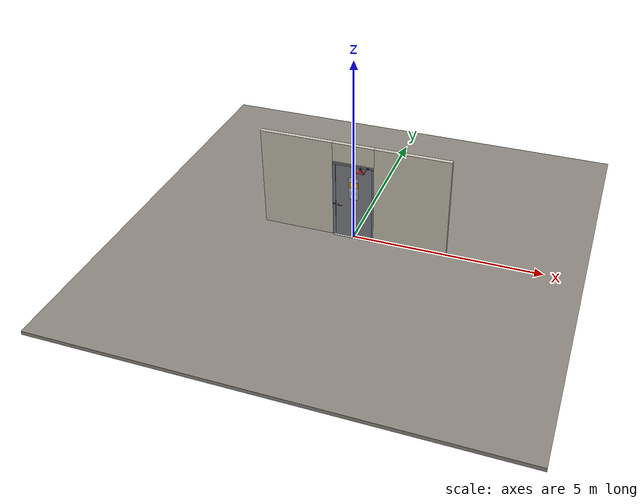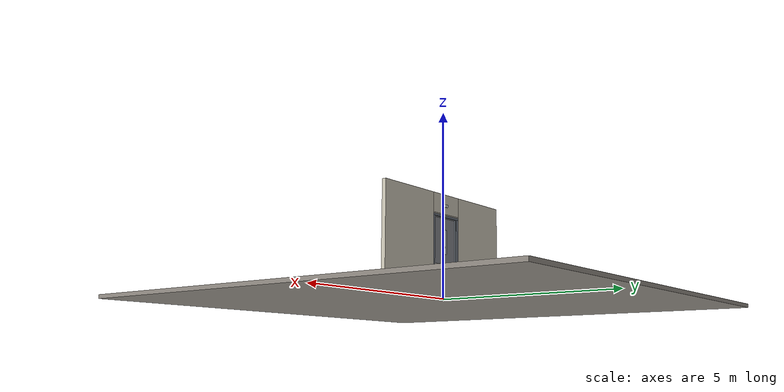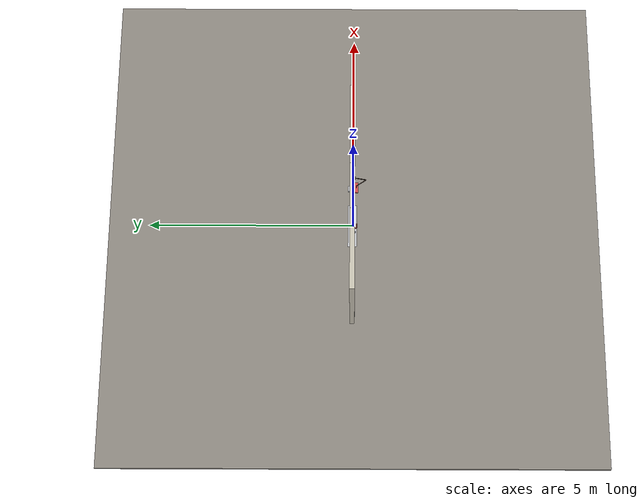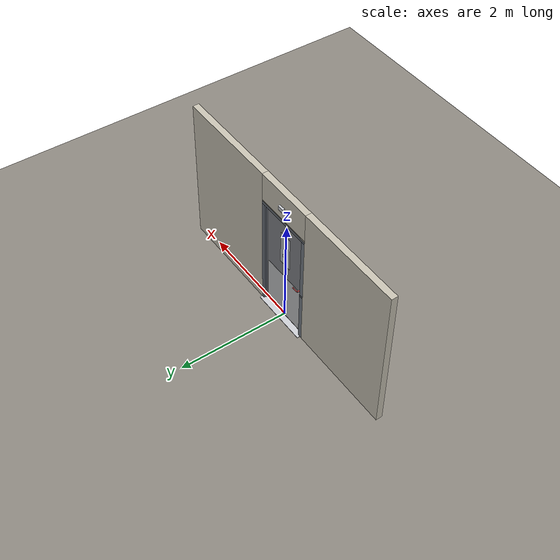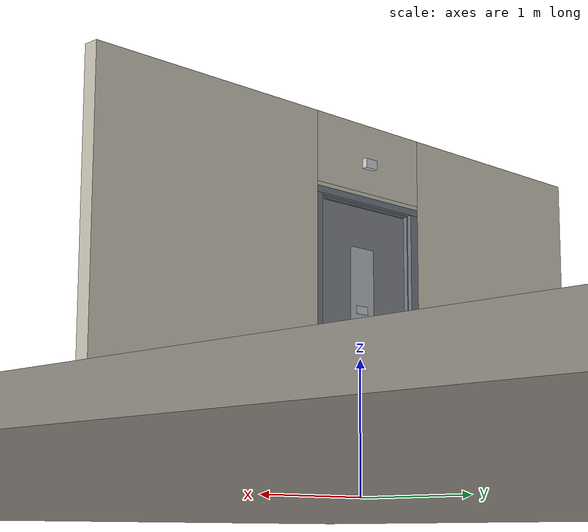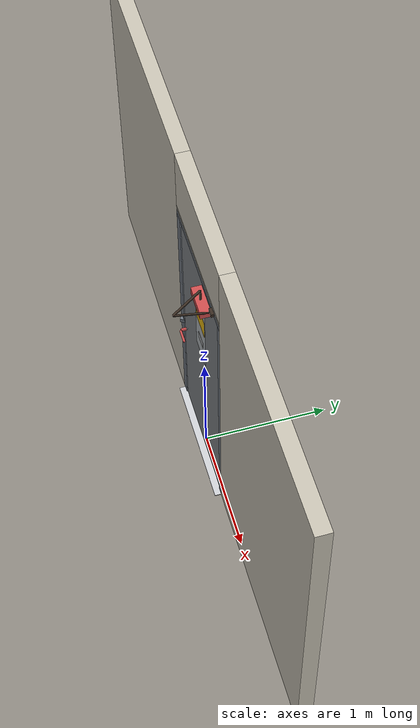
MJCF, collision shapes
<?xml version="1.0" ?>
<mujoco model="db0385_swing_single_full">
  <compiler angle="radian" meshdir="../../hardware" texturedir="../../textures" autolimits="true" inertiafromgeom="false"/>
  <option timestep="0.002" integrator="implicitfast" cone="elliptic" impratio="10" noslip_iterations="3">
    <flag multiccd="enable"/>
  </option>
  <size memory="16M"/>
  <default>
    <geom condim="4" solref="0.005 1" solimp="0.95 0.99 0.001"/>
    <joint solreflimit="0.005 1" solimplimit="0.95 0.99 0.001"/>
    <tendon solreflimit="0.005 1"/>
    <equality solref="0.002 1"/>
  </default>
  <visual>
    <headlight ambient="0.4 0.4 0.4" diffuse="0.7 0.7 0.7" specular="0.2 0.2 0.2"/>
    <quality shadowsize="4096"/>
    <map znear="0.01" zfar="60"/>
  </visual>
  <asset>
    <mesh name="closer_body_b226fdb10b" file="closer_body_b226fdb10b.obj"/>
    <mesh name="exit_sign_a6449bfa2c" file="exit_sign_a6449bfa2c.obj"/>
    <mesh name="hinge_e22b26c0c1" file="hinge_e22b26c0c1.obj"/>
    <mesh name="hinge_jamb_e1d088f8dc" file="hinge_jamb_e1d088f8dc.obj"/>
    <mesh name="lever_6268dcb28c" file="lever_6268dcb28c.obj"/>
    <material name="mat_floor" rgba="0.55 0.53 0.5 1" specular="0.2" shininess="0.15" reflectance="0"/>
    <material name="mat_wall" rgba="0.78 0.76 0.7 1" specular="0.2" shininess="0.1" reflectance="0"/>
    <material name="mat_leaf" rgba="0.5 0.51 0.53 1" specular="0.2" shininess="0.63" reflectance="0"/>
    <material name="mat_glass" rgba="0.9 0.93 0.95 0.6" specular="0.2" shininess="0.5" reflectance="0.1"/>
    <material name="mat_hinge" rgba="0.65 0.66 0.68 1" specular="0.74" shininess="0.5" reflectance="0.36"/>
    <material name="mat_op_stainless" rgba="0.75 0.76 0.77 1" specular="0.8" shininess="0.65" reflectance="0.4"/>
    <material name="mat_trim" rgba="0.85 0.66 0.3 1" specular="0.8" shininess="0.75" reflectance="0.4"/>
    <material name="mat_bolt" rgba="0.85 0.66 0.3 1" specular="0.8" shininess="0.75" reflectance="0.4"/>
    <material name="mat_frame" rgba="0.45 0.48 0.52 1" specular="0.32" shininess="0.6" reflectance="0.08"/>
    <material name="mat_seal" rgba="0.1 0.1 0.1 1" specular="0.2" shininess="0.1" reflectance="0"/>
    <material name="mat_threshold" rgba="0.8 0.81 0.83 1" specular="0.8" shininess="0.6" reflectance="0.4"/>
    <material name="mat_closer" rgba="0.22 0.17 0.13 1" specular="0.8" shininess="0.6" reflectance="0.4"/>
    <material name="mat_kick" rgba="0.75 0.76 0.77 1" specular="0.8" shininess="0.65" reflectance="0.4"/>
    <material name="mat_exit_sign" rgba="0.85 0.1 0.1 1" specular="0.2" shininess="0.6" reflectance="0"/>
    <material name="mat_sign_bracket" rgba="0.8 0.81 0.83 1" specular="0.8" shininess="0.6" reflectance="0.4"/>
    <material name="mat_sign" rgba="0.75 0.76 0.77 1" specular="0.8" shininess="0.65" reflectance="0.4"/>
    <material name="mat_placard" rgba="0.95 0.75 0.05 1" specular="0.2" shininess="0.5" reflectance="0"/>
    <texture name="skybox" type="skybox" builtin="gradient" rgb1="0.6 0.7 0.85" rgb2="0.9 0.92 0.95" width="256" height="256"/>
  </asset>
  <worldbody>
    <light name="sun" pos="1.5 -2.5 4" dir="-0.3 0.5 -0.8" directional="true" diffuse="0.8 0.8 0.8" specular="0.3 0.3 0.3" castshadow="true"/>
    <light name="fill" pos="-1.5 2.5 3" dir="0.3 -0.5 -0.7" directional="true" diffuse="0.35 0.35 0.4" castshadow="false"/>
    <camera name="robot_view" pos="0 -2.609312 1.812087" xyaxes="1 0 0 0 0.26963 0.962964" fovy="52"/>
    <camera name="far_view" pos="0 2.666313 1.812087" xyaxes="-1 0 0 0 -0.26963 0.962964" fovy="52"/>
    <camera name="iso" pos="-2.004737 -2.187262 2.234138" xyaxes="0.741536 -0.670913 0 0.242917 0.268487 0.932151" fovy="46"/>
    <camera name="detail_handle" pos="-0.136 -0.877 1.245" xyaxes="0.97561 0.219512 0 -0.070934 0.315262 0.94635" fovy="38"/>
    <geom name="floor" type="box" size="6 6 0.05" pos="0 0 -0.05" material="mat_floor" group="0" contype="1" conaffinity="1" friction="0.8 0.005 0.0001" density="2400"/>
    <geom name="wall_left" type="box" size="0.967 0.0575 1.3735" pos="-1.533 0.0285 1.3735" material="mat_wall" group="0" contype="1" conaffinity="1" friction="0.6 0.005 0.0001" density="800"/>
    <geom name="wall_right" type="box" size="0.982 0.0575 1.3735" pos="1.518 0.0285 1.3735" material="mat_wall" group="0" contype="1" conaffinity="1" friction="0.6 0.005 0.0001" density="800"/>
    <geom name="wall_header" type="box" size="0.551 0.0575 0.26" pos="-0.015 0.0285 2.487" material="mat_wall" group="0" contype="1" conaffinity="1" friction="0.6 0.005 0.0001" density="800"/>
    <geom name="hinge_0_jamb" type="mesh" mesh="hinge_jamb_e1d088f8dc" pos="0.483 -0.029 0.259" quat="0 0 1 0" material="mat_hinge" group="1" contype="0" conaffinity="0" density="7850"/>
    <geom name="hinge_1_jamb" type="mesh" mesh="hinge_jamb_e1d088f8dc" pos="0.483 -0.029 1.076" quat="0 0 1 0" material="mat_hinge" group="1" contype="0" conaffinity="0" density="7850"/>
    <geom name="hinge_2_jamb" type="mesh" mesh="hinge_jamb_e1d088f8dc" pos="0.483 -0.029 1.963" quat="0 0 1 0" material="mat_hinge" group="1" contype="0" conaffinity="0" density="7850"/>
    <geom name="jamb_hinge" type="box" size="0.025 0.0575 1.0735" pos="0.511 0.0285 1.0735" material="mat_frame" group="0" contype="1" conaffinity="1" friction="0.6 0.005 0.0001" density="300"/>
    <geom name="strike_965_wall_n" type="box" size="0.04 0.03825 0.0183" pos="-0.526 0.04775 0.965" material="mat_frame" group="0" contype="1" conaffinity="1" friction="0.6 0.005 0.0001" density="300"/>
    <geom name="strike_965_wall_p" type="box" size="0.04 0.008 0.0183" pos="-0.526 -0.0175 0.965" material="mat_frame" group="0" contype="1" conaffinity="1" friction="0.6 0.005 0.0001" density="300"/>
    <geom name="strike_965_ramp" type="box" size="0.04 0.018028 0.0183" pos="-0.529282 -0.018312 0.965" quat="0.957092 0 0 -0.289784" material="mat_frame" group="0" contype="1" conaffinity="1" friction="0.12 0.005 0.0001" density="300"/>
    <geom name="strike_965_back" type="box" size="0.0285 0.0095 0.0183" pos="-0.5375 0 0.965" material="mat_frame" group="0" contype="1" conaffinity="1" friction="0.6 0.005 0.0001" density="300"/>
    <geom name="jamb_strike_0" type="box" size="0.04 0.0575 0.47335" pos="-0.526 0.0285 0.47335" material="mat_frame" group="0" contype="1" conaffinity="1" friction="0.6 0.005 0.0001" density="300"/>
    <geom name="jamb_strike_1" type="box" size="0.04 0.0575 0.58185" pos="-0.526 0.0285 1.56515" material="mat_frame" group="0" contype="1" conaffinity="1" friction="0.6 0.005 0.0001" density="300"/>
    <geom name="jamb_head" type="box" size="0.551 0.0575 0.025" pos="-0.015 0.0285 2.172" material="mat_frame" group="0" contype="1" conaffinity="1" friction="0.6 0.005 0.0001" density="300"/>
    <geom name="head_stud" type="box" size="0.551 0.0575 0.015" pos="-0.015 0.0285 2.212" material="mat_wall" group="0" contype="1" conaffinity="1" friction="0.6 0.005 0.0001" density="500"/>
    <geom name="stop_hinge" type="box" size="0.0055 0.016 1.0735" pos="0.4805 0.0385 1.0735" material="mat_frame" group="0" contype="1" conaffinity="1" friction="0.6 0.005 0.0001" density="300"/>
    <geom name="stop_strike" type="box" size="0.0055 0.016 1.0735" pos="-0.4805 0.0385 1.0735" material="mat_frame" group="0" contype="1" conaffinity="1" friction="0.6 0.005 0.0001" density="300"/>
    <geom name="stop_head" type="box" size="0.486 0.016 0.0055" pos="0 0.0385 2.1415" material="mat_frame" group="0" contype="1" conaffinity="1" friction="0.6 0.005 0.0001" density="300"/>
    <geom name="seal_hinge" type="box" size="0.004 0.0025 1.0735" pos="0.483 0.0245 1.0735" material="mat_seal" group="1" contype="0" conaffinity="0" density="1100"/>
    <geom name="seal_strike" type="box" size="0.004 0.0025 1.0735" pos="-0.483 0.0245 1.0735" material="mat_seal" group="1" contype="0" conaffinity="0" density="1100"/>
    <geom name="seal_head" type="box" size="0.466 0.0025 0.008" pos="0 0.0245 2.135" material="mat_seal" group="1" contype="0" conaffinity="0" density="1100"/>
    <geom name="threshold" type="box" size="0.536 0.1075 0.004" pos="0 0.0285 0.004" material="mat_threshold" group="0" contype="1" conaffinity="1" friction="0.6 0.005 0.0001" density="2700"/>
    <geom name="closer_bracket" type="box" size="0.03 0.012 0.014" pos="0.386 -0.041 2.177" material="mat_closer" group="1" contype="0" conaffinity="0" density="2700"/>
    <geom name="exit_sign" type="mesh" mesh="exit_sign_a6449bfa2c" pos="0 0.15 2.447" material="mat_exit_sign" group="2" contype="0" conaffinity="0" density="500"/>
    <geom name="exit_sign_bracket" type="box" size="0.05775 0.02 0.035" pos="0 0.1055 2.447" material="mat_sign_bracket" group="2" contype="0" conaffinity="0" density="7850"/>
    <site name="approach_point" pos="0 -1.5 0" quat="1 0 0 0" size="0.05" rgba="0.2 0.9 0.2 0.5" group="4"/>
    <site name="goal_point" pos="0 1.5 0" quat="1 0 0 0" size="0.05" rgba="0.2 0.9 0.2 0.5" group="4"/>
    <site name="door_plane_center" pos="0 0 1.0735" quat="1 0 0 0" size="0.02" rgba="0.2 0.9 0.2 0.5" group="4"/>
    <body name="leaf" pos="0.486 0 0">
      <inertial pos="-0.457148 -0.004324 1.103268" mass="56.295695" quat="0.515883 -0.511925 -0.477228 -0.494015" diaginertia="4.010163171 25.985170728 29.937387678"/>
      <joint name="leaf_hinge" type="hinge" axis="0 0 1" pos="-0.003 -0.029 0" limited="true" range="0 1.745329" solreflimit="0.02 1" damping="10.334212" frictionloss="2.209501" stiffness="14.018367" springref="-2.188557" armature="0.02"/>
      <geom name="leaf_slab" type="box" size="0.4825 0.022 1.067" pos="-0.4855 0 1.076" material="mat_leaf" group="0" contype="1" conaffinity="1" friction="0.4 0.005 0.0001" density="1"/>
      <geom name="leaf_glass_0" type="box" size="0.125 0.0228 0.3201" pos="-0.4855 0 1.5028" material="mat_glass" group="1" contype="0" conaffinity="0" density="1"/>
      <geom name="hinge_0" type="mesh" mesh="hinge_e22b26c0c1" pos="-0.003 -0.029 0.259" quat="0 0 1 0" material="mat_hinge" group="1" contype="0" conaffinity="0" density="7850"/>
      <geom name="hinge_1" type="mesh" mesh="hinge_e22b26c0c1" pos="-0.003 -0.029 1.076" quat="0 0 1 0" material="mat_hinge" group="1" contype="0" conaffinity="0" density="7850"/>
      <geom name="hinge_2" type="mesh" mesh="hinge_e22b26c0c1" pos="-0.003 -0.029 1.963" quat="0 0 1 0" material="mat_hinge" group="1" contype="0" conaffinity="0" density="7850"/>
      <geom name="leaf_latch_bolt_faceplate" type="box" size="0.0006 0.014 0.0283" pos="-0.9674 0 0.965" material="mat_bolt" group="1" contype="0" conaffinity="0" density="8500"/>
      <geom name="closer_body" type="mesh" mesh="closer_body_b226fdb10b" pos="-0.3 -0.022 2.054" quat="0 0 -0.707107 0.707107" material="mat_closer" group="1" contype="0" conaffinity="0" density="2000"/>
      <geom name="closer_body_col" type="box" size="0.12 0.04 0.03" pos="-0.3 -0.062 2.054" material="mat_closer" group="3" contype="1" conaffinity="1" rgba="0.8 0.3 0.3 0.25" friction="0.6 0.005 0.0001" density="2000"/>
      <geom name="closer_pinion_shaft" type="cylinder" size="0.008 0.0615" pos="-0.3 -0.064 2.1155" material="mat_closer" group="1" contype="0" conaffinity="0" density="2700"/>
      <geom name="armor_plate" type="box" size="0.4525 0.0008 0.45" pos="-0.4855 0.0228 0.469" material="mat_kick" group="2" contype="0" conaffinity="0" density="7900"/>
      <geom name="sign_push" type="box" size="0.06 0.001 0.03" pos="-0.4855 0.023 1.359" material="mat_sign" group="2" contype="0" conaffinity="0" density="7900"/>
      <geom name="sign_pull" type="box" size="0.06 0.001 0.03" pos="-0.4855 -0.023 1.359" material="mat_sign" group="2" contype="0" conaffinity="0" density="7900"/>
      <geom name="warning_placard" type="box" size="0.11 0.001 0.08" pos="-0.4855 -0.023 1.6095" material="mat_placard" group="2" contype="0" conaffinity="0" density="1000"/>
      <site name="leaf_edge_mid" pos="-0.968 0 1.067" quat="1 0 0 0" size="0.02" rgba="0.2 0.9 0.2 0.5" group="4"/>
      <body name="leaf_handle" pos="-0.898 0 0.965">
        <inertial pos="0.035149 0 0" mass="1.038236" quat="0.707107 0 0 -0.707107" diaginertia="0.002348364 0.00382535 0.005606687"/>
        <joint name="leaf_handle_hinge" type="hinge" axis="0 1 0" limited="true" range="0 0.96" damping="0.255791" frictionloss="0.05" stiffness="1.2" springref="-0.583333" armature="0.01"/>
        <geom name="leaf_handle_spindle" type="cylinder" size="0.006 0.03" pos="0 0 0" quat="0.707107 -0.707107 0 0" material="mat_op_stainless" group="1" contype="0" conaffinity="0" density="7850"/>
        <geom name="leaf_handle_lever_n" type="mesh" mesh="lever_6268dcb28c" pos="0 -0.022 0" quat="0 0 -0.707107 0.707107" material="mat_op_stainless" group="1" contype="0" conaffinity="0" density="3000"/>
        <geom name="leaf_handle_lever_col_n" type="capsule" size="0.0095 0.0505" pos="0.06 -0.077 0" quat="0.707107 0 0.707107 0" material="mat_op_stainless" group="3" contype="1" conaffinity="1" rgba="0.8 0.3 0.3 0.25" friction="0.7 0.01 0.0001" density="3000"/>
        <geom name="leaf_handle_hub_col_n" type="cylinder" size="0.012 0.022" pos="0 -0.052 0" quat="0.707107 -0.707107 0 0" material="mat_op_stainless" group="3" contype="1" conaffinity="1" rgba="0.8 0.3 0.3 0.25" friction="0.6 0.005 0.0001" density="3000"/>
        <geom name="leaf_handle_lever_p" type="mesh" mesh="lever_6268dcb28c" pos="0 0.022 0" quat="0 0 0.707107 0.707107" material="mat_op_stainless" group="1" contype="0" conaffinity="0" density="3000"/>
        <geom name="leaf_handle_lever_col_p" type="capsule" size="0.0095 0.0505" pos="0.06 0.077 0" quat="0.707107 0 0.707107 0" material="mat_op_stainless" group="3" contype="1" conaffinity="1" rgba="0.8 0.3 0.3 0.25" friction="0.7 0.01 0.0001" density="3000"/>
        <geom name="leaf_handle_hub_col_p" type="cylinder" size="0.012 0.022" pos="0 0.052 0" quat="0.707107 -0.707107 0 0" material="mat_op_stainless" group="3" contype="1" conaffinity="1" rgba="0.8 0.3 0.3 0.25" friction="0.6 0.005 0.0001" density="3000"/>
        <site name="leaf_handle_grip_n" pos="0.096 -0.077 0" quat="1 0 0 0" size="0.012" rgba="0.2 0.9 0.2 0.5" group="4"/>
        <site name="leaf_handle_grip_p" pos="0.096 0.077 0" quat="1 0 0 0" size="0.012" rgba="0.2 0.9 0.2 0.5" group="4"/>
      </body>
      <body name="leaf_latch_bolt" pos="-0.968 0 0.965">
        <inertial pos="0.0055 0 0" mass="0.074627" quat="0.92388 0.382683 0 0" diaginertia="0.000002271 0.000013255 0.000013255"/>
        <joint name="leaf_latch_bolt_slide" type="slide" axis="1 0 0" limited="true" range="0 0.019" damping="2" frictionloss="0.3" stiffness="600" springref="-0.01" armature="0.1"/>
        <geom name="leaf_latch_bolt_capsule" type="capsule" size="0.008 0.0165" pos="0.0055 0 0" quat="0.707107 0 -0.707107 0" material="mat_bolt" group="0" contype="1" conaffinity="1" friction="0.2 0.005 0.0001" density="8500"/>
      </body>
      <body name="closer_arm_main" pos="-0.3 -0.064 2.177" quat="0.881485 0 0 -0.472212">
        <inertial pos="0.14 0 0" mass="0.12096" quat="1 0 0 0" diaginertia="0.000003588 0.00079128 0.000792852"/>
        <joint name="closer_pinion" type="hinge" axis="0 0 1" limited="false" damping="0.01" armature="0.002"/>
        <geom name="closer_arm_main_geom" type="box" size="0.14 0.008 0.005" pos="0.14 0 0" material="mat_closer" group="1" contype="0" conaffinity="0" density="2700"/>
        <body name="closer_arm_fore" pos="0.28 0 0" quat="0.371222 0 0 0.928544">
          <inertial pos="0.128088 0 0" mass="0.076531" quat="1 0 0 0" diaginertia="0.000001771 0.000437665 0.000438201"/>
          <joint name="closer_elbow" type="hinge" axis="0 0 1" limited="false" damping="0.01" armature="0.002"/>
          <geom name="closer_arm_fore_geom" type="box" size="0.1125 0.007 0.004" pos="0.1125 0 0" material="mat_closer" group="1" contype="0" conaffinity="0" density="2700"/>
          <geom name="closer_fore_neck" type="box" size="0.0175 0.003 0.003" pos="0.2425 0 0" material="mat_closer" group="1" contype="0" conaffinity="0" density="2700"/>
          <geom name="closer_fore_pivot" type="cylinder" size="0.005 0.012" pos="0.26 0 0" material="mat_closer" group="1" contype="0" conaffinity="0" density="2700"/>
        </body>
      </body>
    </body>
  </worldbody>
  <tendon>
    <fixed name="leaf_latch_bolt_coupling" limited="true" range="0 10">
      <joint joint="leaf_latch_bolt_slide" coef="1"/>
      <joint joint="leaf_handle_hinge" coef="-0.020879"/>
    </fixed>
  </tendon>
  <equality>
    <connect name="closer_arm_connect" body1="closer_arm_fore" body2="world" anchor="0.26 0 0" active="true"/>
  </equality>
  <contact>
    <exclude body1="closer_arm_main" body2="leaf"/>
    <exclude body1="closer_arm_fore" body2="leaf"/>
    <exclude body1="closer_arm_main" body2="closer_arm_fore"/>
  </contact>
  <sensor>
    <jointpos name="leaf_hinge_pos" joint="leaf_hinge"/>
    <jointvel name="leaf_hinge_vel" joint="leaf_hinge"/>
    <jointpos name="leaf_handle_hinge_pos" joint="leaf_handle_hinge"/>
    <jointvel name="leaf_handle_hinge_vel" joint="leaf_handle_hinge"/>
    <jointpos name="leaf_latch_bolt_slide_pos" joint="leaf_latch_bolt_slide"/>
    <jointvel name="leaf_latch_bolt_slide_vel" joint="leaf_latch_bolt_slide"/>
  </sensor>
</mujoco>
